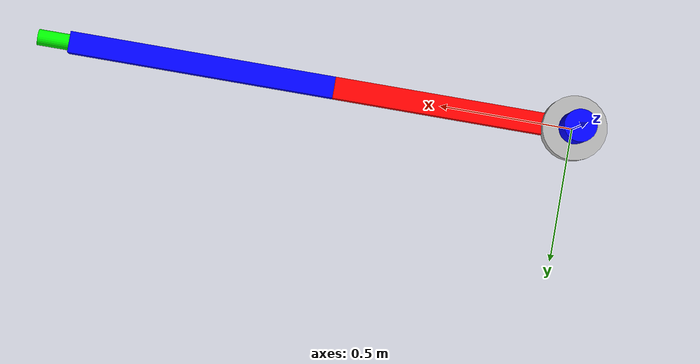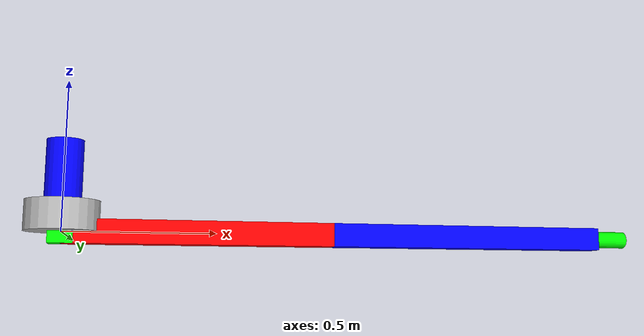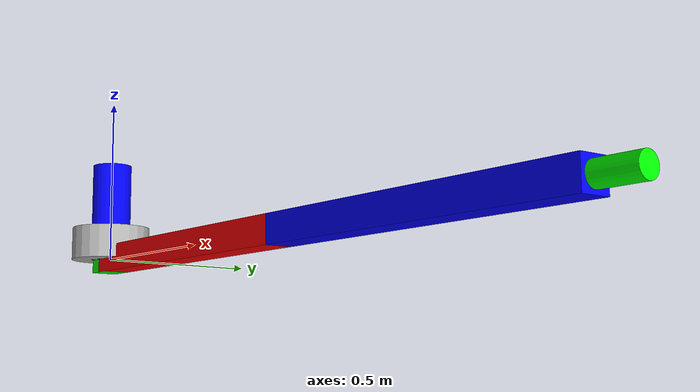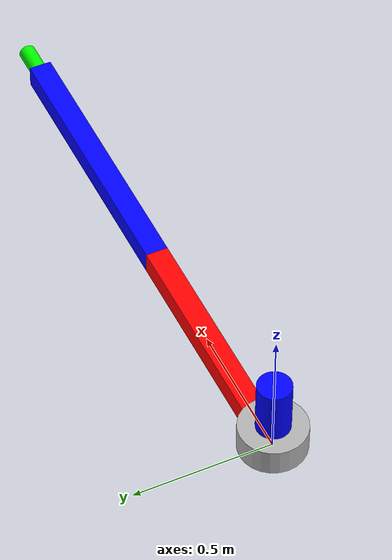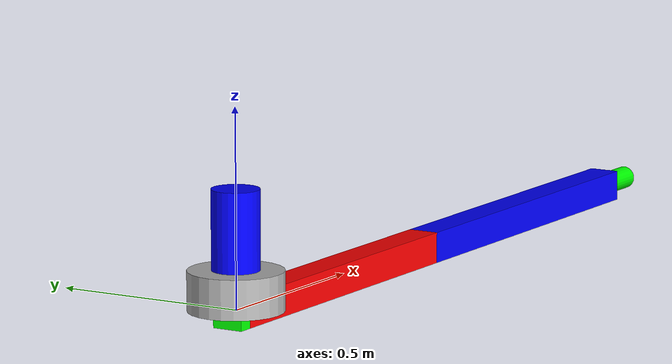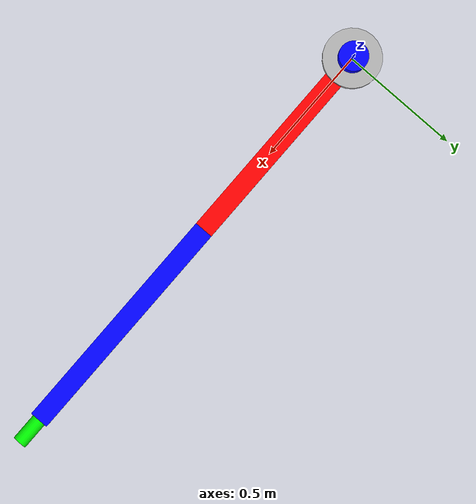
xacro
<?xml version="1.0"?>
<robot xmlns:xacro="http://www.ros.org/wiki/xacro" name="rtr_manipulator">

  <!-- ================= PARAMETERS ================= -->
  <xacro:property name="l2" value="0.9"/>
  <xacro:property name="l3" value="1.0"/>
  <xacro:property name="width" value="0.08"/>

  <xacro:property name="base_radius" value="0.12"/>
  <xacro:property name="base_height" value="0.10"/>

  <xacro:property name="yaw_radius" value="0.06"/>
  <xacro:property name="yaw_height" value="0.30"/>

  <xacro:property name="tool_radius" value="0.03"/>
  <xacro:property name="tool_length" value="0.12"/>

  <!-- ================= MATERIALS ================= -->
  <material name="blue"><color rgba="0 0 1 1"/></material>
  <material name="red"><color rgba="1 0 0 1"/></material>
  <material name="green"><color rgba="0 1 0 1"/></material>
  <material name="grey"><color rgba="0.7 0.7 0.7 1"/></material>

  <!-- ================= MACROS ================= -->

  <xacro:macro name="box_link" params="name size_x size_y size_z origin_x origin_y origin_z mass material_name">
    <link name="${name}">
      <inertial>
        <origin xyz="${origin_x} ${origin_y} ${origin_z}" rpy="0 0 0"/>
        <mass value="${mass}"/>
        <inertia ixx="0.1" ixy="0" ixz="0" iyy="0.1" iyz="0" izz="0.1"/>
      </inertial>

      <visual>
        <origin xyz="${origin_x} ${origin_y} ${origin_z}" rpy="0 0 0"/>
        <geometry>
          <box size="${size_x} ${size_y} ${size_z}"/>
        </geometry>
        <material name="${material_name}"/>
      </visual>

      <collision>
        <origin xyz="${origin_x} ${origin_y} ${origin_z}" rpy="0 0 0"/>
        <geometry>
          <box size="${size_x} ${size_y} ${size_z}"/>
        </geometry>
      </collision>
    </link>
  </xacro:macro>

  <xacro:macro name="cylinder_link" params="name radius length origin_x origin_y origin_z mass material_name">
    <link name="${name}">
      <inertial>
        <origin xyz="${origin_x} ${origin_y} ${origin_z}" rpy="0 0 0"/>
        <mass value="${mass}"/>
        <inertia ixx="0.05" ixy="0" ixz="0" iyy="0.05" iyz="0" izz="0.05"/>
      </inertial>

      <visual>
        <origin xyz="${origin_x} ${origin_y} ${origin_z}" rpy="0 0 0"/>
        <geometry>
          <cylinder radius="${radius}" length="${length}"/>
        </geometry>
        <material name="${material_name}"/>
      </visual>

      <collision>
        <origin xyz="${origin_x} ${origin_y} ${origin_z}" rpy="0 0 0"/>
        <geometry>
          <cylinder radius="${radius}" length="${length}"/>
        </geometry>
      </collision>
    </link>
  </xacro:macro>

  <!-- ================= LINKS ================= -->

  <link name="world"/>

  <xacro:cylinder_link
    name="base_link"
    radius="${base_radius}"
    length="${base_height}"
    origin_x="0" origin_y="0" origin_z="${base_height/2}"
    mass="5"
    material_name="grey"/>

  <xacro:cylinder_link
    name="link_yaw"
    radius="${yaw_radius}"
    length="${yaw_height}"
    origin_x="0" origin_y="0" origin_z="${yaw_height/2}"
    mass="2"
    material_name="blue"/>

  <xacro:box_link
    name="link_carriage"
    size_x="${width}" size_y="${width}" size_z="${width}"
    origin_x="0" origin_y="0" origin_z="0"
    mass="1"
    material_name="green"/>

  <xacro:box_link
    name="link_upper"
    size_x="${l2}" size_y="${width}" size_z="${width}"
    origin_x="${l2/2}" origin_y="0" origin_z="0"
    mass="10"
    material_name="red"/>

  <xacro:box_link
    name="link_forearm"
    size_x="${l3}" size_y="${width}" size_z="${width}"
    origin_x="${l3/2}" origin_y="0" origin_z="0"
    mass="10"
    material_name="blue"/>

  <link name="tool0">
    <visual>
      <origin xyz="${tool_length/2} 0 0" rpy="0 1.5708 0"/>
      <geometry>
        <cylinder radius="${tool_radius}" length="${tool_length}"/>
      </geometry>
      <material name="green"/>
    </visual>

    <collision>
      <origin xyz="${tool_length/2} 0 0" rpy="0 1.5708 0"/>
      <geometry>
        <cylinder radius="${tool_radius}" length="${tool_length}"/>
      </geometry>
    </collision>
  </link>

  <!-- ================= JOINTS ================= -->

  <joint name="world_to_base" type="fixed">
    <parent link="world"/>
    <child link="base_link"/>
    <origin xyz="0 0 0" rpy="0 0 0"/>
  </joint>

  <joint name="joint_theta1" type="revolute">
    <parent link="base_link"/>
    <child link="link_yaw"/>
    <origin xyz="0 0 0" rpy="0 0 0"/>
    <axis xyz="0 0 1"/>
    <limit lower="-3.14159" upper="3.14159" effort="100" velocity="1.0"/>
  </joint>

  <joint name="joint_theta2" type="prismatic">
    <parent link="link_yaw"/>
    <child link="link_carriage"/>
    <origin xyz="0 0 0" rpy="0 0 0"/>
    <axis xyz="0 0 1"/>
    <limit lower="0.0" upper="2.0" effort="200" velocity="0.25"/>
  </joint>

  <joint name="fixed_carriage_upper" type="fixed">
    <parent link="link_carriage"/>
    <child link="link_upper"/>
    <origin xyz="0 0 0" rpy="0 0 0"/>
  </joint>

  <joint name="joint_theta3" type="revolute">
    <parent link="link_upper"/>
    <child link="link_forearm"/>
    <origin xyz="${l2} 0 0" rpy="0 0 0"/>
    <axis xyz="0 -1 0"/>
    <limit lower="-3.14159" upper="3.14159" effort="100" velocity="1.0"/>
  </joint>

  <joint name="wrist_to_tool0" type="fixed">
    <parent link="link_forearm"/>
    <child link="tool0"/>
    <origin xyz="${l3} 0 0" rpy="0 0 0"/>
  </joint>

  <!-- ================= ROS2 CONTROL ================= -->

  <ros2_control name="RTRMock" type="system">
    <hardware>
      <plugin>mock_components/GenericSystem</plugin>
      <param name="fake_sensor_commands">false</param>
    </hardware>

    <joint name="joint_theta1">
      <command_interface name="position"/>
      <state_interface name="position">
        <param name="initial_value">0.0</param>
      </state_interface>
    </joint>

    <joint name="joint_theta2">
      <command_interface name="position"/>
      <state_interface name="position">
        <param name="initial_value">0.5</param>
      </state_interface>
    </joint>

    <joint name="joint_theta3">
      <command_interface name="position"/>
      <state_interface name="position">
        <param name="initial_value">0.2</param>
      </state_interface>
    </joint>
  </ros2_control>

</robot>
